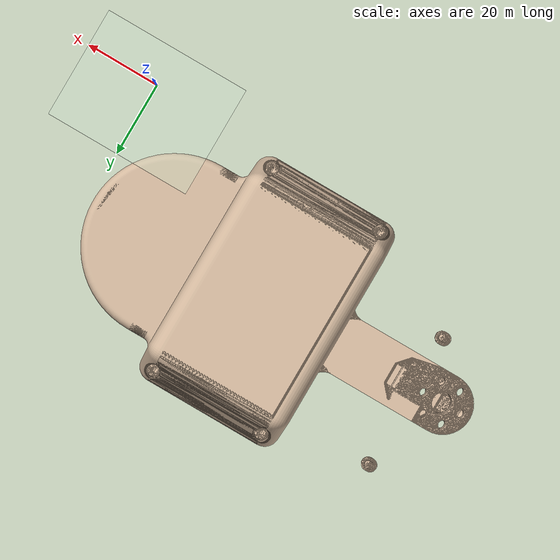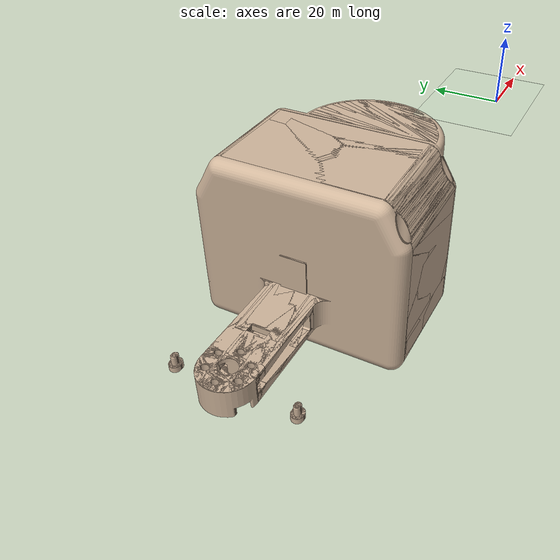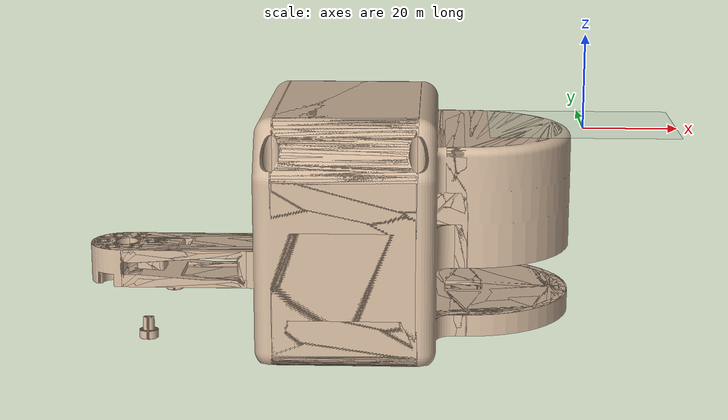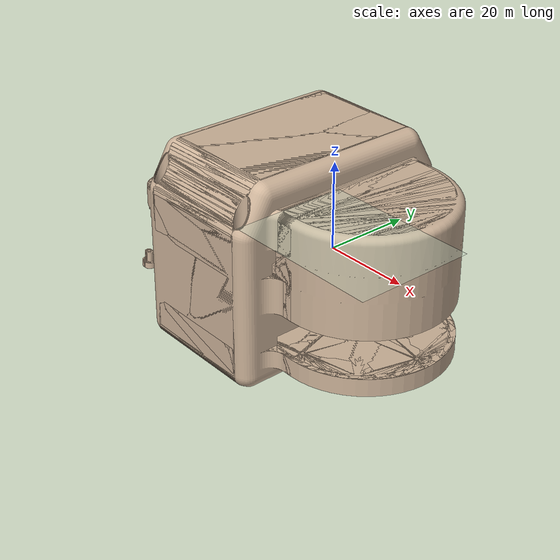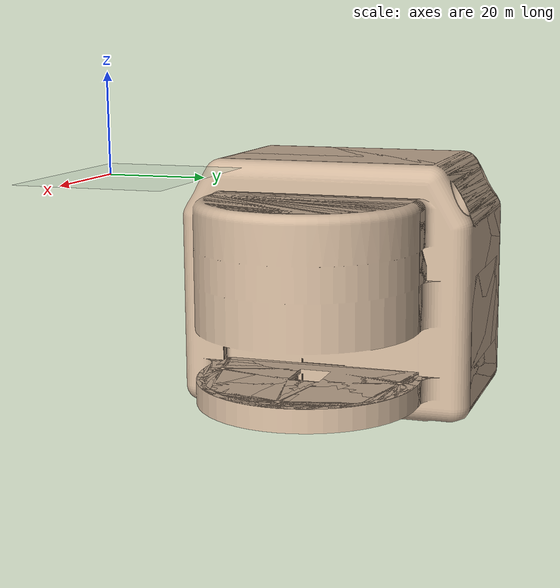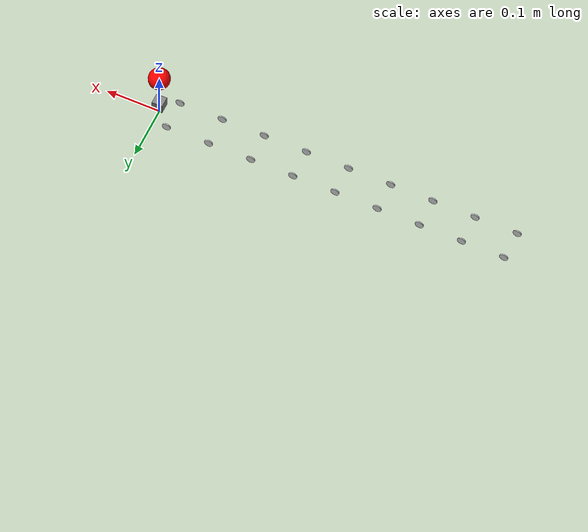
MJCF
<mujoco model="planar_snake_car_servo">
    <compiler angle="degree" coordinate="local" inertiafromgeom="true"/>

    <option integrator="Euler" timestep="0.0125">
        <flag energy="enable" clampctrl="enable"/>
    </option>

    <size nconmax="1000"/>

    <default>
        <geom conaffinity="0" condim="3" friction="1 0.05 0.00001" margin="0.01" density="600" />

        <joint armature='0.001' damping="0" frictionloss="0.001" />

        <default class="wheel">
            <joint axis="0 1 0" type="hinge" damping="0.2"/>
            <geom type="cylinder" fromto="0 0 0  0 0.002 0" size="0.008" material="geom" rgba=".9 .9 .9 1" friction="1.25 1.0 0.0001"/>
        </default>

        <default class="car">
            <geom material="geom" rgba="0.8 0.7 .6 1" />
            <joint pos="0 0 0" axis="0 0 1" type="hinge" limited="true" range="-90 90"/>
        </default>

        <position ctrllimited="true" ctrlrange="-1.5 1.5" forcelimited="true" forcerange="-20.0 20.0" kp="20" gear="1"/>

    </default>

    <asset>
        <texture builtin="gradient" height="100" rgb1="1 1 1" rgb2="0 0 0" type="skybox" width="100"/>
        <texture builtin="flat" height="1278" mark="cross" markrgb="1 1 1" name="texgeom" random="0.01"
                 rgb1="0.8 0.6 0.4" rgb2="0.8 0.6 0.4" type="cube" width="127"/>
        <texture builtin="checker" height="100" name="texplane" rgb1=".2 .3 .4" rgb2=".1 0.15 0.2"  type="2d" width="100" gridsize="1 1"/>
        <material name="MatPlane" reflectance="0.5" shininess="1" specular="1" texrepeat="80 80" texture="texplane"/>
        <material name="geom" texture="texgeom" texuniform="true"/>
        <material name="MatTarget" rgba="1 0 0 1" reflectance="0.05" shininess="0.1" specular="0.1"/>
        <mesh file="module_asm.stl" scale="1 1 1"/>
        <material name="matplane" reflectance="0.3" texture="texplane" texrepeat="1 1" texuniform="true"/>
    </asset>

    <visual>
        <map znear="0.0625"  />
        <quality shadowsize="4096"/>

    </visual>

    <worldbody>
        <light cutoff="100" diffuse="1 1 1" dir="-0 0 -1.3" directional="true" exponent="1" pos="0 0 1.3"
               specular=".1 .1 .1"/>
        <geom name="floor" size="20 20 10" material="matplane" conaffinity="1" condim="3" pos="0 0 0" rgba="0.8 0.9 0.8 1" type="plane"/>

        <!-- the first object is a target ball -->
        <body name="target_ball" pos="0 0 0.0">
            <joint axis="1 0 0" name="target_slider_x" type="slide"/>
            <joint axis="0 1 0" name="target_slider_y" type="slide"/>
            <geom name="target_ball_geom" type="sphere" pos="0 0 0.1" size="0.02" material="MatTarget"/>
            <camera name="track_ball" mode="trackcom" pos="0 -4 6" euler="30 0 0"/>
            <camera name="track_ball2" mode="targetbodycom" pos="0 0 1" zaxis="0 0 90" />
        </body>

        <!-- the second object is the robot -->
        <body name="car1" pos="0 0 0.0248">

            <joint axis="1 0 0" name="slider_x" type="slide"/>
            <joint axis="0 1 0" name="slider_y" type="slide"/>
            <joint axis="0 0 1" name="slider_z" type="slide"/>

            <joint pos="0 0 0" axis="1 0 0" name="hinge_x" type="hinge"/>
            <joint pos="0 0 0" axis="0 1 0" name="hinge_y" type="hinge"/>
            <joint pos="0 0 0" axis="0 0 1" name="hinge_z" type="hinge"/>

            <body pos="-0.027 0.02775 -0.0168" childclass="wheel"><joint name="joint_wheel_l_00"/><geom/></body>

            <geom name="head" pos="0 0 0" type="mesh" mesh="module_asm" euler="270 270 0"  rgba="0.8 0.7 .6 1"/>

            <body pos="-0.027 -0.02775 -0.0168" childclass="wheel"><joint name="joint_wheel_r_00"/><geom/></body>

            <site name='site_head' pos='0 0 0.0' type='box'  size='.01 .01 .01'/>

                <body name="car2" pos="-0.08075 0 0.0">
                    <joint name="joint01"/>
                    <body pos="-0.027 0.02775 -0.0168" childclass="wheel"><joint name="joint_wheel_l_01"/><geom/></body>
                    <geom name="car2_geom" pos="0.0 0.0 0.0" type="mesh" mesh="module_asm" euler="270 270 0" rgba="0.8 0.7 .6 1"/>
                    <body pos="-0.027 -0.02775 -0.0168" childclass="wheel"><joint name="joint_wheel_r_01"/><geom/></body>

                    <body name="car3" pos="-0.08075 0 0.0">
                        <joint name="joint02"/>
                        <body pos="-0.027 0.02775 -0.0168" childclass="wheel"><joint name="joint_wheel_l_02"/><geom/></body>
                        <geom name="car3_geom" pos="0.0 0.0 0.0" type="mesh" mesh="module_asm" euler="270 270 0" rgba="0.8 0.7 .6 1"/>
                        <body pos="-0.027 -0.02775 -0.0168" childclass="wheel"><joint name="joint_wheel_r_02"/><geom/></body>

                        <body name="car4" pos="-0.08075 0 0.0">
                            <joint name="joint03"/>
                            <body pos="-0.027 0.02775 -0.0168" childclass="wheel"><joint name="joint_wheel_l_03"/><geom/></body>
                            <geom name="car4_geom" pos="0.0 0.0 0.0" type="mesh" mesh="module_asm" euler="270 270 0" rgba="0.8 0.7 .6 1"/>
                            <body pos="-0.027 -0.02775 -0.0168" childclass="wheel"><joint name="joint_wheel_r_03"/><geom/></body>

                            <body name="car5" pos="-0.08075 0 0.0">
                                <joint name="joint04"/>
                                <body pos="-0.027 0.02775 -0.0168" childclass="wheel"><joint name="joint_wheel_l_04"/><geom/></body>
                                <geom name="car5_geom" pos="0.0 0.0 0.0" type="mesh" mesh="module_asm" euler="270 270 0" rgba="0.8 0.7 .6 1"/>
                                <body pos="-0.027 -0.02775 -0.0168" childclass="wheel"><joint name="joint_wheel_r_04"/><geom/></body>

                                <body name="car6" pos="-0.08075 0 0.0">
                                    <joint name="joint05"/>
                                    <body pos="-0.027 0.02775 -0.0168" childclass="wheel"><joint name="joint_wheel_l_05"/><geom/></body>
                                    <geom name="car6_geom" pos="0.0 0.0 0.0" type="mesh" mesh="module_asm" euler="270 270 0" rgba="0.8 0.7 .6 1"/>
                                    <body pos="-0.027 -0.02775 -0.0168" childclass="wheel"><joint name="joint_wheel_r_05"/><geom/></body>

                                    <body name="car7" pos="-0.08075 0 0.0">
                                        <joint name="joint06"/>
                                        <body pos="-0.027 0.02775 -0.0168" childclass="wheel"><joint name="joint_wheel_l_06"/><geom/></body>
                                        <geom name="car7_geom" pos="0.0 0.0 0.0" type="mesh" mesh="module_asm" euler="270 270 0" rgba="0.8 0.7 .6 1"/>
                                        <body pos="-0.027 -0.02775 -0.0168" childclass="wheel"><joint name="joint_wheel_r_06"/><geom/></body>

                                        <body name="car8" pos="-0.08075 0 0.0">
                                            <joint name="joint07"/>
                                            <body pos="-0.027 0.02775 -0.0168" childclass="wheel"><joint name="joint_wheel_l_07"/><geom/></body>
                                            <geom name="car8_geom" pos="0.0 0.0 0.0" type="mesh" mesh="module_asm" euler="270 270 0" rgba="0.8 0.7 .6 1"/>
                                            <body pos="-0.027 -0.02775 -0.0168" childclass="wheel"><joint name="joint_wheel_r_07"/><geom/></body>

                                            <body name="car9" pos="-0.08075 0 0.0">
                                                <joint name="joint08"/>
                                                <body pos="-0.027 0.02775 -0.0168" childclass="wheel"><joint name="joint_wheel_l_08"/><geom/></body>
                                                <geom name="car9_geom" pos="0.0 0.0 0.0" type="mesh" mesh="module_asm" euler="270 270 0" rgba="0.8 0.7 .6 1"/>
                                                <body pos="-0.027 -0.02775 -0.0168" childclass="wheel"><joint name="joint_wheel_r_08"/><geom/></body>
                                            </body>
                                        </body>
                                    </body>
                                </body>
                            </body>
                        </body>
                    </body>
                </body>
        </body>
    </worldbody>

    <actuator >
        <position name="actuator_joint01" joint="joint01"/>
        <position name="actuator_joint02" joint="joint02"/>
        <position name="actuator_joint03" joint="joint03"/>
        <position name="actuator_joint04" joint="joint04"/>
        <position name="actuator_joint05" joint="joint05"/>
        <position name="actuator_joint06" joint="joint06"/>
        <position name="actuator_joint07" joint="joint07"/>
        <position name="actuator_joint08" joint="joint08"/>
    </actuator>

    <sensor>
        <actuatorfrc name="sensor_actuatorfrc_joint01" actuator="actuator_joint01" />
        <actuatorfrc name="sensor_actuatorfrc_joint02" actuator="actuator_joint02" />
        <actuatorfrc name="sensor_actuatorfrc_joint03" actuator="actuator_joint03" />
        <actuatorfrc name="sensor_actuatorfrc_joint04" actuator="actuator_joint04" />
        <actuatorfrc name="sensor_actuatorfrc_joint05" actuator="actuator_joint05" />
        <actuatorfrc name="sensor_actuatorfrc_joint06" actuator="actuator_joint06" />
        <actuatorfrc name="sensor_actuatorfrc_joint07" actuator="actuator_joint07" />
        <actuatorfrc name="sensor_actuatorfrc_joint08" actuator="actuator_joint08" />

        <velocimeter name="sensor_velocimeter" site="site_head"/>
        <accelerometer name="sensor_accelerometer" site="site_head"/>
    </sensor>
</mujoco>
